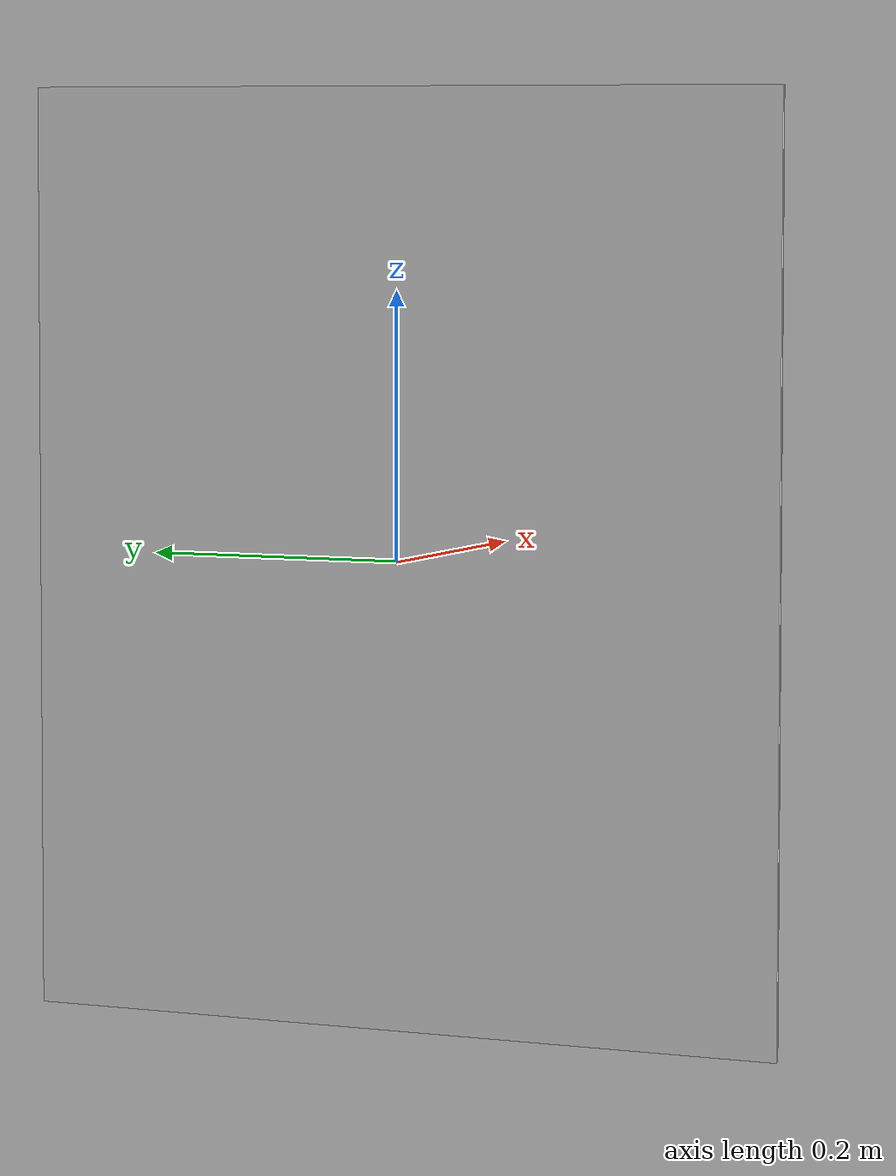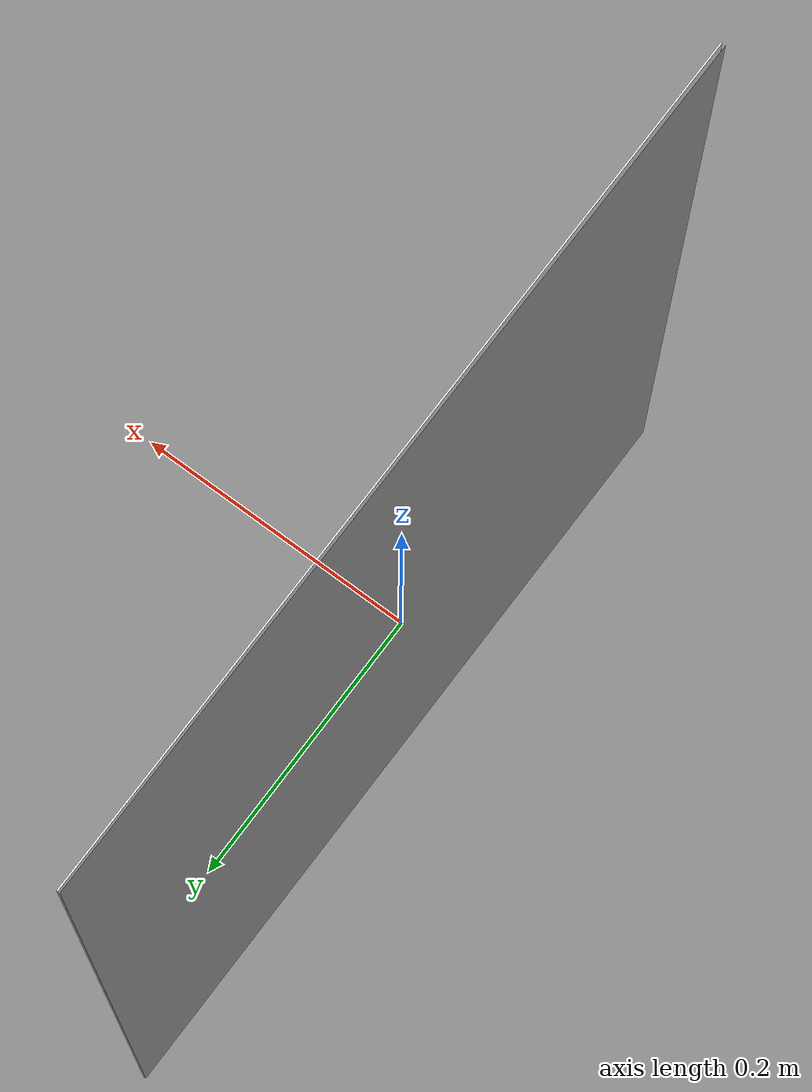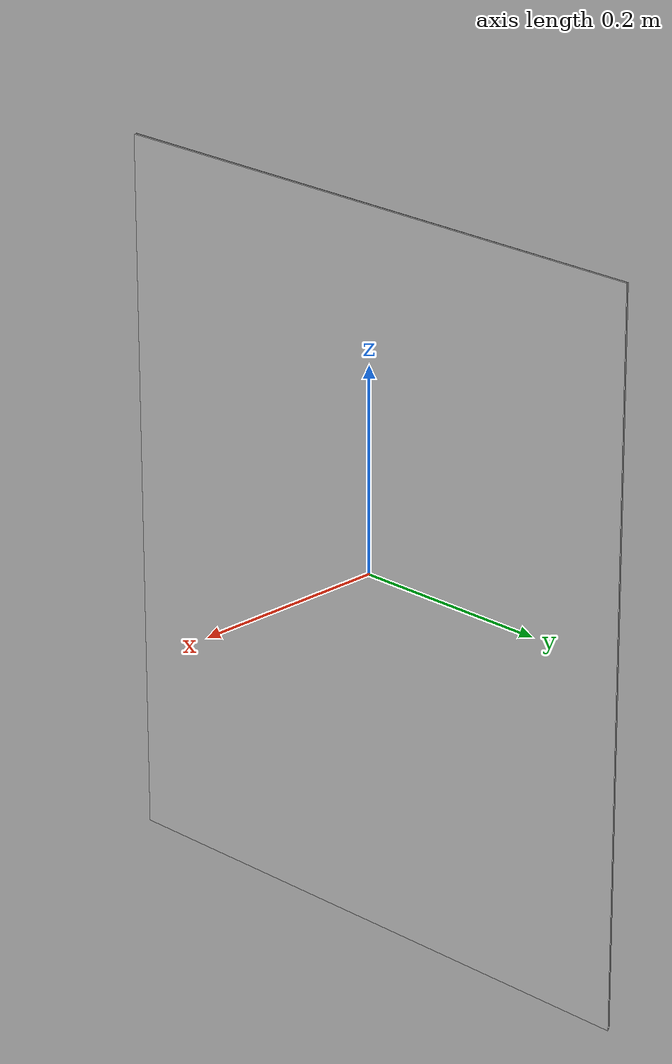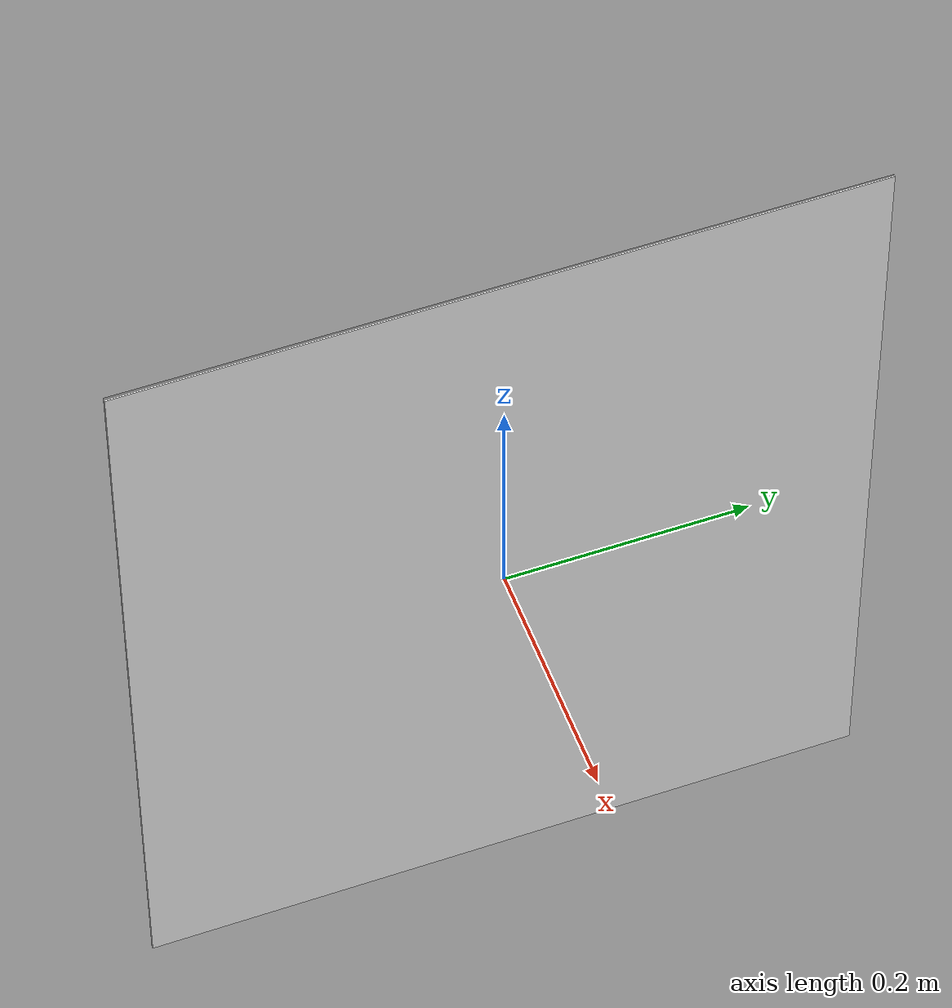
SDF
<?xml version="1.0" ?>
<sdf version="1.6">
  <model name="poster">

    <static>true</static>

    <link name="link">

      <visual name="visual_back">
        <pose>+0.0021 0 0 0 1.5714 0</pose>
        <geometry>
          <box> <size>0.7 0.6 0.001</size></box>  <!-- height width 0.001 -->
        </geometry>
        <material>
          <ambient>1 1 1 1</ambient>
          <diffuse>1 1 1 1</diffuse>
          <specular>1 1 1 1</specular>
        </material>
      </visual>

      <visual name="visual_front">
        <pose>0 0 0 0 0 3.14</pose>
        <geometry>
          <mesh>
            <uri>model://poster/meshes/poster.dae</uri>
            <scale>1 0.6 0.7</scale> <!-- 1 width height -->
          </mesh>
        </geometry>
      </visual>
    </link>

  </model>
</sdf>
